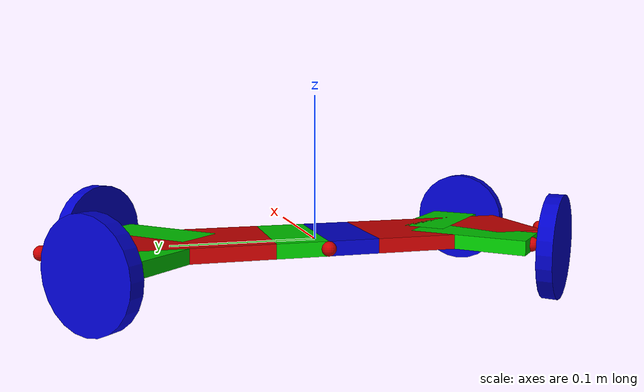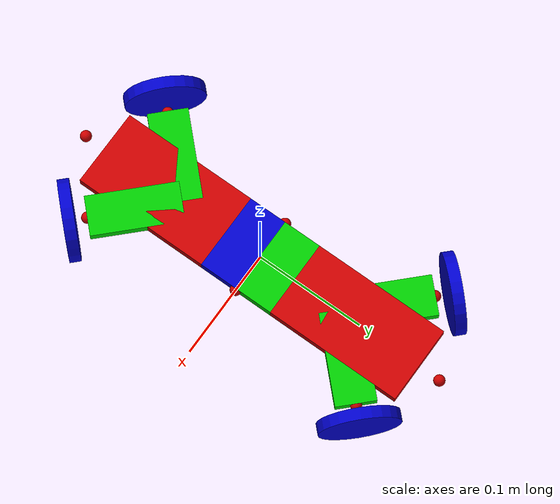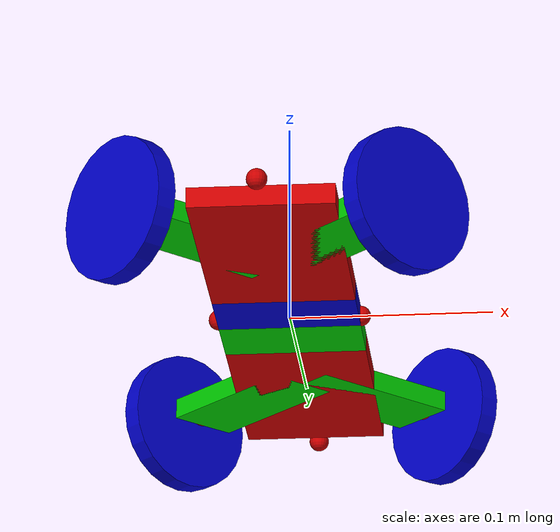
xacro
<?xml version="1.0"?>
<robot xmlns:xacro="http://www.ros.org/wiki/xacro">
    <material name="red">
        <color rgba="0.8 0 0 1"/>
    </material>

    <material name="green">
        <color rgba="0 0.8 0 1"/>
    </material>

    <material name="blue">
        <color rgba="0 0 0.8 1"/>
    </material>

    <material name="white">
        <color rgba="1 1 1 1" />
    </material>

    <material name="black">
        <color rgba="0 0 0 1" />
    </material>

    <xacro:property name="module_height" value="0.01" />

    <xacro:macro name="empty_inertial" params="">
        <inertial>
            <mass value="0.0001" />
            <inertia
                    ixx="0.0001" ixy="0.0" ixz="0.0"
                    iyy="0.0001" iyz="0.0"
                    izz="0.0001" />
        </inertial>
    </xacro:macro>

    <xacro:macro name="empty_gazebo_link" params="">
        <visual>
            <geometry>
                <sphere radius="0.005"/>
            </geometry>
            <material name="red" />
        </visual>
        <xacro:empty_inertial />
    </xacro:macro>

    <xacro:macro name="cylinder_inertial" params="r l m">
        <inertial>
            <mass value="${m}" />
            <inertia
                    ixx="${(1.0/12.0)*m*(3.0*r*r + l*l)}" ixy="0.0" ixz="0.0"
                    iyy="${(1.0/12.0)*m*(3.0*r*r + l*l)}" iyz="0.0"
                    izz="${(1.0/2.0)*m*r*r}" />
        </inertial>
    </xacro:macro>

    <xacro:macro name="box_inertial" params="w h d m">
        <inertial>
            <mass value="${m}" />
            <inertia
                    ixx="${(1.0/12.0)*m*(h*h + d*d)}" ixy="0.0" ixz="0.0"
                    iyy="${(1.0/12.0)*m*(w*w + d*d)}" iyz="0.0"
                    izz="${(1.0/12.0)*m*(w*w + h*h)}" />
        </inertial>
    </xacro:macro>

    <xacro:macro name="revolute_transmission" params="joint_name reduction">
        <transmission name="${joint_name}_transmission">
            <type>transmission_interface/SimpleTransmission</type>
            <actuator name="${joint_name}_motor">
                <mechanicalReduction>${reduction}</mechanicalReduction>
            </actuator>
            <joint name="${joint_name}">
                <hardwareInterface>hardware_interface/EffortJointInterface</hardwareInterface>
            </joint>
        </transmission>
    </xacro:macro>

    <xacro:macro name="continuous_transmission" params="joint_name reduction">
        <transmission name="${joint_name}_transmission">
            <type>transmission_interface/SimpleTransmission</type>
            <actuator name="${joint_name}_motor">
                <mechanicalReduction>${reduction}</mechanicalReduction>
            </actuator>
            <joint name="${joint_name}">
                <hardwareInterface>hardware_interface/VelocityJointInterface</hardwareInterface>
            </joint>
        </transmission>
    </xacro:macro>

    <xacro:macro name="mars_module" params="prefix">

        <link name="world"/>
    	    <!-- World fixed joint-->
        <joint name="world_fixed" type="fixed">
    		<origin xyz="0 0 0" rpy="0 0 0"/>
    		<parent link="world"/>
    		<child link="${prefix}_base_link"/>
  		</joint>
        <link name="${prefix}_base_link" />

        <link name="${prefix}_axial_front_connector_link">
            <xacro:empty_gazebo_link />
        </link>

        <link name="${prefix}_axial_back_connector_link">
            <xacro:empty_gazebo_link />
        </link>

        <joint name="${prefix}_axial_front_connector_fixed" type="fixed">
            <origin xyz="0.035 0 0" rpy="0 0 0" />
            <parent link="${prefix}_base_link" />
            <child link="${prefix}_axial_front_connector_link" />
        </joint>

        <joint name="${prefix}_axial_back_connector_fixed" type="fixed">
            <origin xyz="-0.035 0 0" rpy="0 0 0" />
            <parent link="${prefix}_base_link" />
            <child link="${prefix}_axial_back_connector_link" />
        </joint>

        <link name="${prefix}_axial_roll_link">
            <visual>
                <origin xyz="0 -0.0175 0" rpy="0 0 0" />
                <geometry>
                    <box size="0.07 0.035 ${module_height}" />
                </geometry>
                <material name="blue"/>
            </visual>
            <xacro:box_inertial w="0.07" h="0.035" d="${module_height}" m="0.05"/>
        </link>

        <joint name="${prefix}_axial_roll_joint" type="revolute">
            <origin xyz="0 0 0" rpy="0 0 0"/>
            <parent link="${prefix}_base_link" />
            <child link="${prefix}_axial_roll_link" />
            <axis xyz="1 0 0"/>
            <limit effort="100.0" lower="-${pi/2}" upper="${pi/2}" velocity="5.0" />
        </joint>

        <xacro:revolute_transmission joint_name="${prefix}_axial_roll_joint" reduction="1" />

        <link name="${prefix}_axial_pitch_link">
            <visual>
                <origin xyz="0 -0.0175 0" rpy="0 0 0" />
                <geometry>
                    <box size="0.07 0.035 ${module_height}" />
                </geometry>
                <material name="green"/>
            </visual>
            <xacro:box_inertial w="0.07" h="0.035" d="${module_height}" m="0.05"/>
        </link>

        <joint name="${prefix}_axial_pitch_joint" type="revolute">
            <origin xyz="0 0.035 0" rpy="0 0 0" />
            <parent link="${prefix}_axial_roll_link" />
            <child link="${prefix}_axial_pitch_link" />
            <axis xyz="0 1 0" />
            <limit effort="100.0" lower="-${pi/2}" upper="${pi/2}" velocity="5.0" />
        </joint>

        <xacro:revolute_transmission joint_name="${prefix}_axial_pitch_joint" reduction="1" />

        <link name="${prefix}_left_axial_base_link">
            <xacro:empty_gazebo_link />
        </link>

        <joint name="${prefix}_left_axial_base_fixed" type="fixed">
            <origin xyz="0 0 0" rpy="0 0 0" />
            <parent link="${prefix}_axial_pitch_link" />
            <child link="${prefix}_left_axial_base_link" />
        </joint>

        <link name="${prefix}_right_axial_base_link">
            <xacro:empty_gazebo_link />
        </link>

        <joint name="${prefix}_right_axial_base_fixed" type="fixed">
            <origin xyz="0 -0.035 0" rpy="0 0 0" />
            <parent link="${prefix}_base_link" />
            <child link="${prefix}_right_axial_base_link" />
        </joint>

        <xacro:macro name="module_side" params="axial_base_link side y_reflect">
            <link name="${prefix}_${side}_base_link">
                <visual>
                    <origin xyz="0 ${0.0175 * y_reflect} 0" rpy="0 0 0" />
                    <geometry>
                        <box size="0.07 0.125 ${module_height}" />
                    </geometry>
                    <material name="red"/>
                </visual>
                <collision>
                    <origin xyz="0 ${0.0175 * y_reflect} 0" rpy="0 0 0" />
                    <geometry>
                        <box size="0.07 0.125 ${module_height}" />
                    </geometry>
                </collision>
                <xacro:box_inertial w="0.07" h="0.125" d="${module_height}" m="0.25"/>
            </link>

            <joint name="${prefix}_${side}_base_fixed" type="fixed">
                <origin xyz="0 ${0.045 * y_reflect} 0" rpy="0 0 0" />
                <parent link="${axial_base_link}" />
                <child link="${prefix}_${side}_base_link" />
            </joint>

            <link name="${prefix}_${side}_connector_link">
                <xacro:empty_gazebo_link />
            </link>

            <joint name="${prefix}_${side}_connector_fixed" type="fixed">
                <origin xyz="0 ${0.1 * y_reflect} 0" rpy="0 0 0"/>
                <parent link="${prefix}_${side}_base_link" />
                <child link="${prefix}_${side}_connector_link" />
            </joint>

            <xacro:module_wheel side_base_link="${prefix}_${side}_base_link"
                                side="${side}" location="front"
                                y_reflect="${y_reflect}" rot_reflect="${y_reflect * 1}"/>
            <xacro:module_wheel side_base_link="${prefix}_${side}_base_link"
                                side="${side}" location="rear"
                                y_reflect="${y_reflect}" rot_reflect="${y_reflect * -1}" />
        </xacro:macro>

        <xacro:macro name="module_wheel" params="side_base_link side location y_reflect rot_reflect">
            <link name="${prefix}_${side}_${location}_wheel_base_link">
                <visual>
                    <origin xyz="0 ${0.040 * y_reflect} 0" rpy="0 0 0" />
                    <geometry>
                        <box size="0.035 0.08 ${module_height}" />
                    </geometry>
                    <material name="green" />
                </visual>
                <collision>
                    <origin xyz="0 ${0.040 * y_reflect} 0" rpy="0 0 0" />
                    <geometry>
                        <box size="0.035 0.08 ${module_height}" />
                    </geometry>
                </collision>
                <xacro:empty_inertial />
            </link>

            <link name="${prefix}_${side}_${location}_wheel_mount_link">
                <xacro:empty_gazebo_link />
            </link>

            <joint name="${prefix}_${side}_${location}_wheel_base_fixed" type="fixed">
                <origin xyz="0 0.0 0" rpy="0 0 ${-(pi/4) * rot_reflect}" />
                <parent link="${side_base_link}" />
                <child link="${prefix}_${side}_${location}_wheel_base_link" />
            </joint>

            <joint name="${prefix}_${side}_${location}_wheel_mount_fixed" type="fixed">
                <origin xyz="0.0 ${0.08 * y_reflect} 0" rpy="0 0 0" />
                <parent link="${prefix}_${side}_${location}_wheel_base_link" />
                <child link="${prefix}_${side}_${location}_wheel_mount_link" />
            </joint>

            <link name="${prefix}_${side}_${location}_wheel_link">
                <visual>
                    <origin xyz="0 0 0" rpy="${pi/2} 0 0" />
                    <geometry>
                        <cylinder radius="0.035" length="0.01" />
                    </geometry>
                    <material name="blue" />
                </visual>
                <collision>
                    <origin xyz="0 0 0" rpy="${pi/2} 0 0" />
                    <geometry>
                        <cylinder radius="0.035" length="0.01" />
                    </geometry>
                </collision>
                <xacro:empty_inertial />
            </link>

            <joint name="${prefix}_${side}_${location}_wheel" type="continuous">
                <origin xyz="0 ${0.015 * y_reflect} 0" rpy="0 0 0" />
                <axis xyz="0 1 0" />
                <parent link="${prefix}_${side}_${location}_wheel_mount_link" />
                <child link="${prefix}_${side}_${location}_wheel_link" />
            </joint>

            <xacro:continuous_transmission joint_name="${prefix}_${side}_${location}_wheel" reduction="1" />
        </xacro:macro>

        <xacro:module_side axial_base_link="${prefix}_left_axial_base_link" side="left" y_reflect="1" />
        <xacro:module_side axial_base_link="${prefix}_right_axial_base_link" side="right" y_reflect="-1" />

    </xacro:macro>

    <xacro:mars_module prefix="001"/>

</robot>
